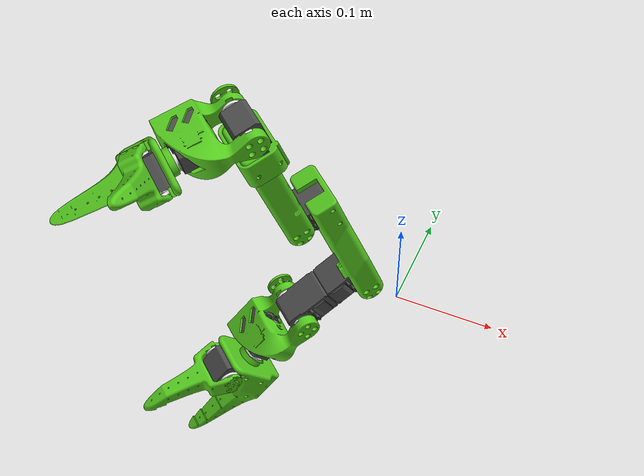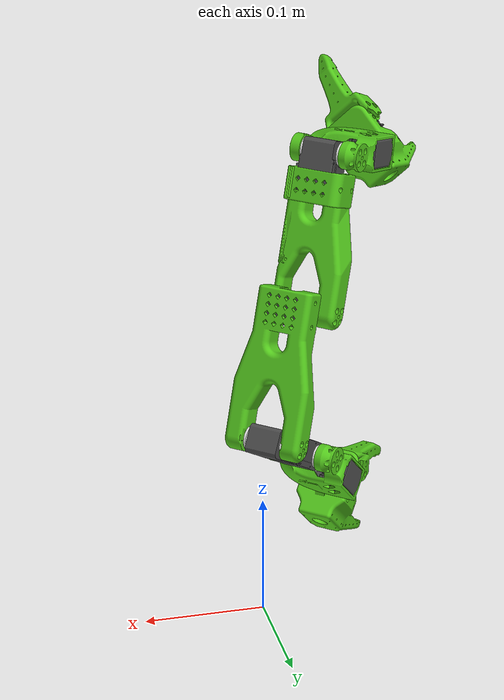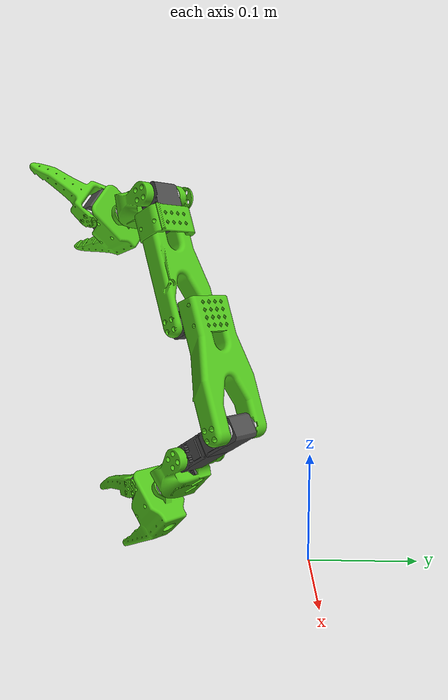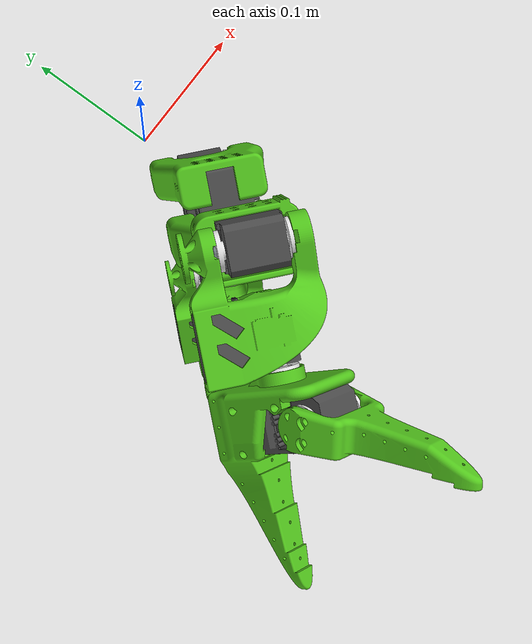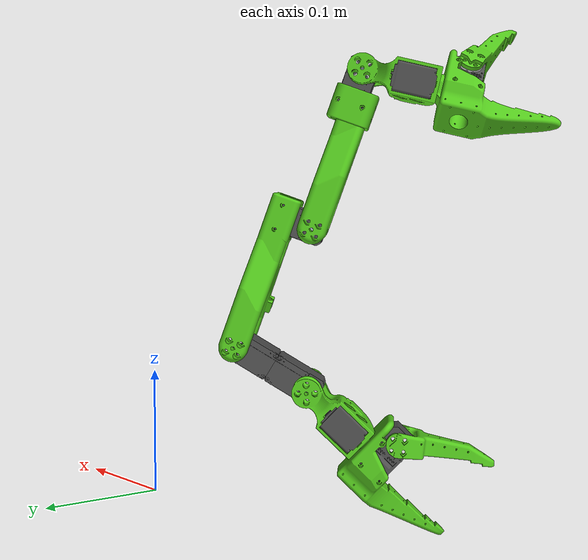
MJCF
<mujoco model="dual2">
  <compiler angle="radian"/>

  <asset>
    <mesh name="socket_button_head_screw_m3x0_5_x_5__3d0b7d67b03d7dab03d7e71c432bce35" content_type="model/stl" file="socket_button_head_screw_m3x0_5_x_5__3d0b7d67b03d7dab03d7e71c432bce35.stl"/>
    <mesh name="sts3215_servo" content_type="model/stl" file="sts3215_servo.stl"/>
    <mesh name="driven_horn" content_type="model/stl" file="driven_horn.stl"/>
    <mesh name="passive_horn" content_type="model/stl" file="passive_horn.stl"/>
    <mesh name="so_arm100_08k_116_square" content_type="model/stl" file="so_arm100_08k_116_square.stl"/>
    <mesh name="so_arm100_08k_mirror" content_type="model/stl" file="so_arm100_08k_mirror.stl"/>
    <mesh name="so_arm100_08k_mirror__2" content_type="model/stl" file="so_arm100_08k_mirror__2.stl"/>
    <mesh name="wrist_roll_pitch_08i" content_type="model/stl" file="wrist_roll_pitch_08i.stl"/>
    <mesh name="wrist_roll_08c" content_type="model/stl" file="wrist_roll_08c.stl"/>
    <mesh name="moving_jaw_08d" content_type="model/stl" file="moving_jaw_08d.stl"/>
  </asset>

  <worldbody>
    <geom pos="-0.0751771 -0.100049 0.0826237" quat="0.10723 0.45295 -0.54299 -0.698928" type="mesh" rgba="0.603922 0.647059 0.686275 1" mesh="socket_button_head_screw_m3x0_5_x_5__3d0b7d67b03d7dab03d7e71c432bce35"/>
    <geom pos="-0.0528391 -0.105496 0.0890825" quat="0.396108 0.24446 0.110267 -0.878168" type="mesh" rgba="0.301961 0.301961 0.301961 1" mesh="sts3215_servo"/>
    <geom pos="-0.0528391 -0.105496 0.0890825" quat="0.396108 0.24446 0.110267 -0.878168" type="mesh" rgba="0.917647 0.917647 0.917647 1" mesh="driven_horn"/>
    <geom pos="-0.0466544 -0.125234 0.0826237" quat="0.396108 0.24446 0.110267 -0.878168" type="mesh" rgba="0.917647 0.917647 0.917647 1" mesh="passive_horn"/>
    <geom pos="-0.00676049 -0.0800519 0.119" quat="-0.110266 0.878168 0.396108 0.244461" type="mesh" rgba="0.917647 0.917647 0.917647 1" mesh="passive_horn"/>
    <geom pos="-0.0352832 -0.0548674 0.119" quat="0.698928 -0.542989 -0.452951 0.107231" type="mesh" rgba="0.603922 0.647059 0.686275 1" mesh="socket_button_head_screw_m3x0_5_x_5__3d0b7d67b03d7dab03d7e71c432bce35"/>
    <geom pos="-0.027112 -0.076359 0.112541" quat="-0.110266 0.878168 0.396108 0.244461" type="mesh" rgba="0.301961 0.301961 0.301961 1" mesh="sts3215_servo"/>
    <geom pos="-0.027112 -0.076359 0.112541" quat="-0.110266 0.878168 0.396108 0.244461" type="mesh" rgba="0.917647 0.917647 0.917647 1" mesh="driven_horn"/>
    <body name="so_arm100_08k_116_square" pos="-0.0340463 -0.0559595 0.119" quat="0.694354 0.359369 0.608978 -0.133685">
      <inertial pos="-0.0692389 -0.00301229 0.0197206" quat="0.475865 0.474137 0.522165 0.525443" mass="0.198604" diaginertia="0.00036564 0.000313285 9.33286e-05"/>
      <joint name="Revolute 2" pos="0 0 0" axis="0 0 1" range="-2.94151 0.200086" actuatorfrcrange="-10 10"/>
      <geom pos="-0.065085 0.012 0.0197" quat="0.707105 0.707108 0 0" type="mesh" rgba="0.329412 0.788235 0.113725 1" mesh="so_arm100_08k_116_square"/>
      <geom pos="-0.11257 -0.028 0.0379" quat="0.499998 0.5 -0.500002 -0.5" type="mesh" rgba="0.917647 0.917647 0.917647 1" mesh="passive_horn"/>
      <geom pos="-0.11257 -0.028 -0.00015" quat="9.38184e-07 -0.707105 0.707108 -9.38188e-07" type="mesh" rgba="0.603922 0.647059 0.686275 1" mesh="socket_button_head_screw_m3x0_5_x_5__3d0b7d67b03d7dab03d7e71c432bce35"/>
      <geom pos="-0.11257 -0.0155 0.0202" quat="0.499998 0.5 -0.500002 -0.5" type="mesh" rgba="0.301961 0.301961 0.301961 1" mesh="sts3215_servo"/>
      <geom pos="-0.11257 -0.0155 0.0202" quat="0.499998 0.5 -0.500002 -0.5" type="mesh" rgba="0.917647 0.917647 0.917647 1" mesh="driven_horn"/>
      <body name="so_arm100_08k_mirror" pos="-0.11257 -0.028 0.0015" quat="1 0 0 3.01201e-09">
        <inertial pos="-0.0758873 0.0012846 0.0147496" quat="0.477269 0.542047 0.516114 0.460463" mass="0.18055" diaginertia="0.000327255 0.000287952 6.19217e-05"/>
        <joint name="Revolute 3" pos="0 0 0" axis="0 0 1" range="-6.02402e-09 3.14159" actuatorfrcrange="-10 10"/>
        <geom pos="-0.0648499 -0.032 0.0182" quat="0.707105 0.707108 0 0" type="mesh" rgba="0.329412 0.788235 0.113725 1" mesh="so_arm100_08k_mirror"/>
        <geom pos="-0.0648499 -0.032 0.0184" quat="0.707105 0.707108 0 0" type="mesh" rgba="0.329412 0.788235 0.113725 1" mesh="so_arm100_08k_mirror__2"/>
        <geom pos="-0.1349 0.0052 0.0363" quat="9.38184e-07 9.38187e-07 -0.707108 -0.707105" type="mesh" rgba="0.917647 0.917647 0.917647 1" mesh="passive_horn"/>
        <geom pos="-0.1349 0.0052 -0.00175" quat="2.17347e-12 -1.32679e-06 -1 1.32679e-06" type="mesh" rgba="0.603922 0.647059 0.686275 1" mesh="socket_button_head_screw_m3x0_5_x_5__3d0b7d67b03d7dab03d7e71c432bce35"/>
        <geom pos="-0.1224 0.0052 0.0186" quat="9.38184e-07 9.38187e-07 -0.707108 -0.707105" type="mesh" rgba="0.301961 0.301961 0.301961 1" mesh="sts3215_servo"/>
        <geom pos="-0.1224 0.0052 0.0186" quat="9.38184e-07 9.38187e-07 -0.707108 -0.707105" type="mesh" rgba="0.917647 0.917647 0.917647 1" mesh="driven_horn"/>
        <body name="wrist_roll_pitch_08i" pos="-0.1349 0.0052 -0.0001" quat="0.664778 0 0 -0.747041">
          <inertial pos="0.0348768 2.4895e-05 0.0103283" quat="0.659112 -0.259442 -0.258434 0.656866" mass="0.0789518" diaginertia="4.97311e-05 3.37971e-05 2.6432e-05"/>
          <joint name="Revolute 4" pos="0 0 0" axis="0 0 1" range="-3.02519 0.116402" actuatorfrcrange="-10 10"/>
          <geom pos="0.028 0 0.0181" quat="0.499998 0.5 0.5 -0.500002" type="mesh" rgba="0.329412 0.788235 0.113725 1" mesh="wrist_roll_pitch_08i"/>
          <geom pos="0.0247 0 0.0181" quat="0.499998 0.5 -0.5 0.500002" type="mesh" rgba="0.917647 0.917647 0.917647 1" mesh="passive_horn"/>
          <geom pos="0.06275 0 0.0181" quat="9.38184e-07 -0.707105 -9.38187e-07 -0.707108" type="mesh" rgba="0.603922 0.647059 0.686275 1" mesh="socket_button_head_screw_m3x0_5_x_5__3d0b7d67b03d7dab03d7e71c432bce35"/>
          <geom pos="0.0424 0 0.0056" quat="0.499998 0.5 -0.5 0.500002" type="mesh" rgba="0.301961 0.301961 0.301961 1" mesh="sts3215_servo"/>
          <geom pos="0.0424 0 0.0056" quat="0.499998 0.5 -0.5 0.500002" type="mesh" rgba="0.917647 0.917647 0.917647 1" mesh="driven_horn"/>
          <body name="wrist_roll_08c" pos="0.0611 0 0.0181" quat="0.65593 0.264111 -0.655932 -0.264111">
            <inertial pos="-0.00588121 0.000485423 -0.0272358" quat="0.649924 0.235394 0.235171 0.683289" mass="0.112045" diaginertia="7.48277e-05 6.46447e-05 3.99649e-05"/>
            <joint name="Revolute 5" pos="0 0 0" axis="0 0 1" range="-0.805218 2.33638" actuatorfrcrange="-10 10"/>
            <geom quat="0.707105 0.707108 0 0" type="mesh" rgba="0.329412 0.788235 0.113725 1" mesh="wrist_roll_08c"/>
            <geom pos="0.0198 -0.0178 -0.023625" quat="1.32679e-06 1 0 0" type="mesh" rgba="0.917647 0.917647 0.917647 1" mesh="passive_horn"/>
            <geom pos="0.0198 0.02025 -0.023625" quat="0.707105 -0.707108 0 0" type="mesh" rgba="0.603922 0.647059 0.686275 1" mesh="socket_button_head_screw_m3x0_5_x_5__3d0b7d67b03d7dab03d7e71c432bce35"/>
            <geom pos="0.0073 -0.0001 -0.023625" quat="1.32679e-06 1 0 0" type="mesh" rgba="0.301961 0.301961 0.301961 1" mesh="sts3215_servo"/>
            <geom pos="0.0073 -0.0001 -0.023625" quat="1.32679e-06 1 0 0" type="mesh" rgba="0.917647 0.917647 0.917647 1" mesh="driven_horn"/>
            <body name="moving_jaw_08d" pos="0.0198 0.0186 -0.023625" quat="0.525396 0.525398 -0.473241 0.473243">
              <inertial pos="-0.00739035 -0.0295297 0.0192843" quat="0.689904 0.712368 -0.0928179 -0.0891538" mass="0.0252688" diaginertia="1.38563e-05 1.12152e-05 3.72291e-06"/>
              <joint name="Revolute 6" pos="0 0 0" axis="0 0 1" range="-1.46644 0.104359" actuatorfrcrange="-10 10"/>
              <geom pos="0 0 0.0189" quat="0.70385 -0.703853 0.0677732 -0.067773" type="mesh" rgba="0.329412 0.788235 0.113725 1" mesh="moving_jaw_08d"/>
            </body>
          </body>
        </body>
      </body>
    </body>
    <body name="wrist_roll_pitch_08i_2" pos="-0.0739402 -0.101141 0.0826237" quat="0.510736 -0.0285358 0.706532 -0.489027">
      <inertial pos="0.0348768 2.4895e-05 0.0103283" quat="0.659112 -0.259442 -0.258434 0.656866" mass="0.0789518" diaginertia="4.97311e-05 3.37971e-05 2.6432e-05"/>
      <joint name="Revolute 4 (1)" pos="0 0 0" axis="0 0 1" range="-1.79454 1.34706" actuatorfrcrange="-10 10"/>
      <geom pos="0.0247 0 0.0181" quat="0.499998 0.5 -0.5 0.500002" type="mesh" rgba="0.917647 0.917647 0.917647 1" mesh="passive_horn"/>
      <geom pos="0.06275 0 0.0181" quat="9.38184e-07 -0.707105 -9.38187e-07 -0.707108" type="mesh" rgba="0.603922 0.647059 0.686275 1" mesh="socket_button_head_screw_m3x0_5_x_5__3d0b7d67b03d7dab03d7e71c432bce35"/>
      <geom pos="0.0424 0 0.0056" quat="0.499998 0.5 -0.5 0.500002" type="mesh" rgba="0.917647 0.917647 0.917647 1" mesh="driven_horn"/>
      <geom pos="0.0424 0 0.0056" quat="0.499998 0.5 -0.5 0.500002" type="mesh" rgba="0.301961 0.301961 0.301961 1" mesh="sts3215_servo"/>
      <geom pos="0.028 0 0.0181" quat="0.499998 0.5 0.5 -0.500002" type="mesh" rgba="0.329412 0.788235 0.113725 1" mesh="wrist_roll_pitch_08i"/>
      <body name="passive_horn" pos="0.0611 0 0.0181" quat="0.499998 0.5 -0.500002 -0.5">
        <inertial pos="-0.00588121 0.000485423 -0.0272358" quat="0.649924 0.235394 0.235171 0.683289" mass="0.112045" diaginertia="7.48277e-05 6.46447e-05 3.99649e-05"/>
        <joint name="Revolute 5 (1)" pos="0 0 0" axis="0 0 1" range="0 3.14159" actuatorfrcrange="-10 10"/>
        <geom pos="0.0073 -0.0001 -0.023625" quat="1.32679e-06 1 0 0" type="mesh" rgba="0.917647 0.917647 0.917647 1" mesh="driven_horn"/>
        <geom pos="0.0073 -0.0001 -0.023625" quat="1.32679e-06 1 0 0" type="mesh" rgba="0.301961 0.301961 0.301961 1" mesh="sts3215_servo"/>
        <geom quat="0.707105 0.707108 0 0" type="mesh" rgba="0.329412 0.788235 0.113725 1" mesh="wrist_roll_08c"/>
        <geom pos="0.0198 0.02025 -0.023625" quat="0.707105 -0.707108 0 0" type="mesh" rgba="0.603922 0.647059 0.686275 1" mesh="socket_button_head_screw_m3x0_5_x_5__3d0b7d67b03d7dab03d7e71c432bce35"/>
        <geom pos="0.0198 -0.0178 -0.023625" quat="1.32679e-06 1 0 0" type="mesh" rgba="0.917647 0.917647 0.917647 1" mesh="passive_horn"/>
        <body name="moving_jaw_08d_2" pos="0.0198 0.0186 -0.023625" quat="0.644246 0.644248 -0.291454 0.291455">
          <inertial pos="-0.00739035 -0.0295297 0.0192843" quat="0.689904 0.712368 -0.0928179 -0.0891538" mass="0.0252688" diaginertia="1.38563e-05 1.12152e-05 3.72291e-06"/>
          <joint name="Revolute 6 (1)" pos="0 0 0" axis="0 0 1" range="-0.849688 0.721109" actuatorfrcrange="-10 10"/>
          <geom pos="0 0 0.0189" quat="0.70385 -0.703853 0.0677732 -0.067773" type="mesh" rgba="0.329412 0.788235 0.113725 1" mesh="moving_jaw_08d"/>
        </body>
      </body>
    </body>
  </worldbody>
</mujoco>
